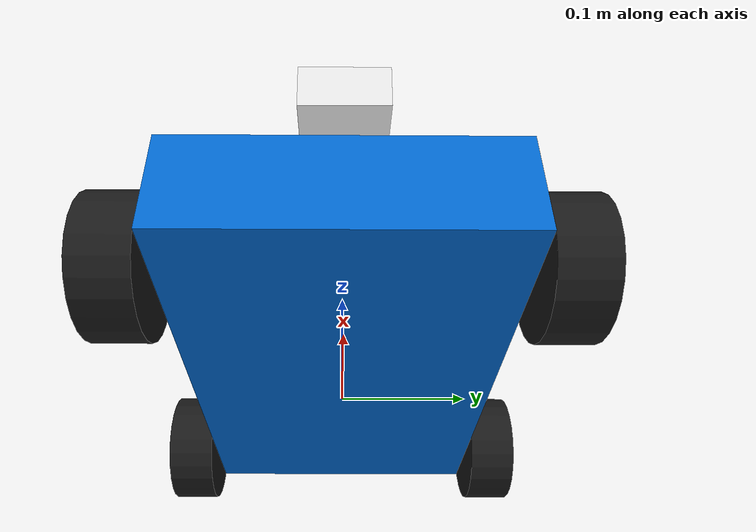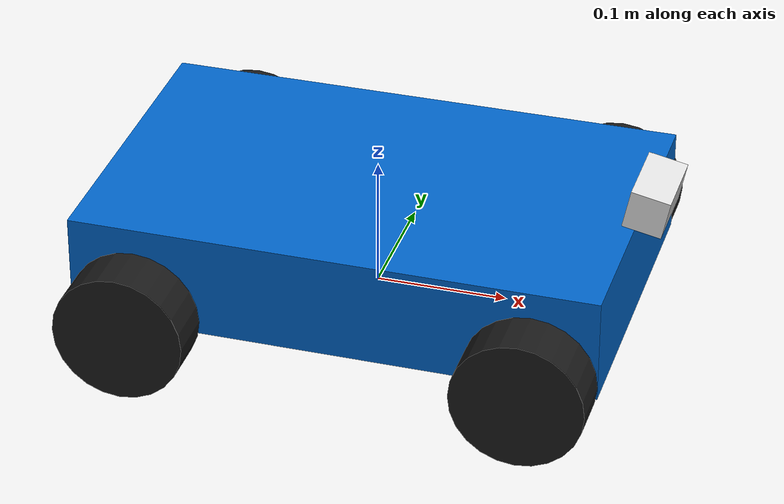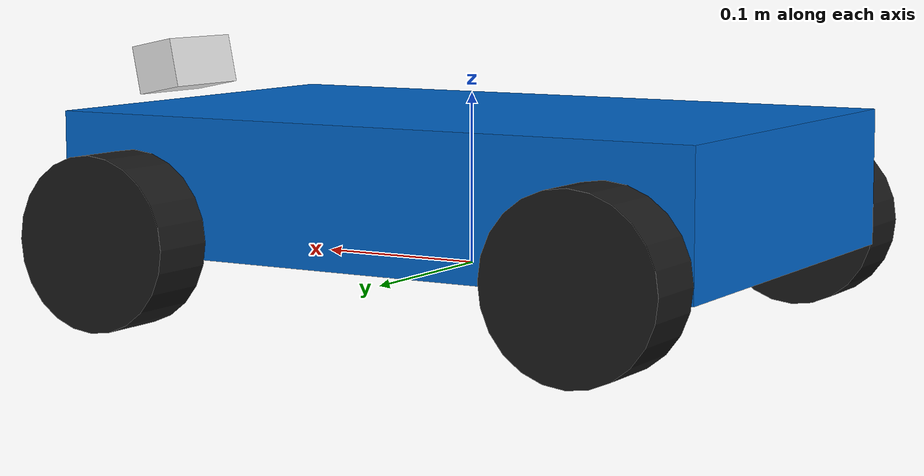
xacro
<?xml version="1.0"?>
<robot xmlns:xacro="http://www.ros.org/wiki/xacro" name="hyper">

  <xacro:arg name="robot_name" default="hyper"/>

  <!-- ============ materials ============ -->
  <material name="black">
    <color rgba="0.1 0.1 0.1 1.0"/>
  </material>
  <material name="white">
    <color rgba="0.9 0.9 0.9 1.0"/>
  </material>
  <material name="blue">
    <color rgba="0.0 0.4 0.8 1.0"/>
  </material>

  <!-- ============ base link ============ -->
  <link name="base_footprint"/>

  <joint name="base_joint" type="fixed">
    <parent link="base_footprint"/>
    <child link="base_link"/>
    <origin xyz="0 0 0.05" rpy="0 0 0"/>
  </joint>

  <link name="base_link">
    <visual>
      <geometry>
        <box size="0.4 0.25 0.08"/>
      </geometry>
      <material name="blue"/>
    </visual>
    <collision>
      <geometry>
        <box size="0.4 0.25 0.08"/>
      </geometry>
    </collision>
    <inertial>
      <mass value="5.0"/>
      <inertia ixx="0.05" ixy="0" ixz="0"
               iyy="0.1"  iyz="0"
               izz="0.1"/>
    </inertial>
  </link>

  <!-- ============ wheels (4x) ============ -->
  <xacro:macro name="wheel" params="name x y">
    <link name="${name}">
      <visual>
        <geometry><cylinder radius="0.05" length="0.04"/></geometry>
        <origin rpy="1.5708 0 0"/>
        <material name="black"/>
      </visual>
      <collision>
        <geometry><cylinder radius="0.05" length="0.04"/></geometry>
        <origin rpy="1.5708 0 0"/>
      </collision>
      <inertial>
        <mass value="0.5"/>
        <inertia ixx="0.001" ixy="0" ixz="0"
                 iyy="0.001" iyz="0"
                 izz="0.001"/>
      </inertial>
    </link>
    <joint name="${name}_joint" type="continuous">
      <parent link="base_link"/>
      <child link="${name}"/>
      <origin xyz="${x} ${y} -0.03" rpy="0 0 0"/>
      <axis xyz="0 1 0"/>
    </joint>
  </xacro:macro>

  <xacro:wheel name="front_left_wheel"  x=" 0.15" y=" 0.145"/>
  <xacro:wheel name="front_right_wheel" x=" 0.15" y="-0.145"/>
  <xacro:wheel name="rear_left_wheel"   x="-0.15" y=" 0.145"/>
  <xacro:wheel name="rear_right_wheel"  x="-0.15" y="-0.145"/>

  <!-- ============ camera ============ -->
  <joint name="camera_joint" type="fixed">
    <parent link="base_link"/>
    <child link="camera_link"/>
    <origin xyz="0.21 0 0.06" rpy="0 0.2 0"/>
  </joint>

  <link name="camera_link">
    <visual>
      <geometry><box size="0.03 0.06 0.03"/></geometry>
      <material name="white"/>
    </visual>
    <collision>
      <geometry><box size="0.03 0.06 0.03"/></geometry>
    </collision>
    <inertial>
      <mass value="0.05"/>
      <inertia ixx="0.0001" ixy="0" ixz="0"
               iyy="0.0001" iyz="0"
               izz="0.0001"/>
    </inertial>
  </link>

  <!-- Gazebo camera sensor -->
  <gazebo reference="camera_link">
    <sensor name="camera" type="camera">
      <always_on>true</always_on>
      <update_rate>30</update_rate>
      <camera>
        <horizontal_fov>1.3962634</horizontal_fov>
        <image>
          <width>640</width>
          <height>480</height>
          <format>R8G8B8</format>
        </image>
        <clip>
          <near>0.02</near>
          <far>100</far>
        </clip>
      </camera>
      <topic>/camera/image_raw</topic>
      <gz_frame_id>camera_link</gz_frame_id>
    </sensor>
  </gazebo>

  <!-- Gazebo diff-drive plugin -->
  <gazebo>
    <plugin filename="gz-sim-diff-drive-system"
            name="gz::sim::systems::DiffDrive">
      <left_joint>front_left_wheel_joint</left_joint>
      <left_joint>rear_left_wheel_joint</left_joint>
      <right_joint>front_right_wheel_joint</right_joint>
      <right_joint>rear_right_wheel_joint</right_joint>
      <wheel_separation>0.29</wheel_separation>
      <wheel_radius>0.05</wheel_radius>
      <odom_publish_frequency>30</odom_publish_frequency>
      <topic>/cmd_vel</topic>
      <odom_topic>/odom</odom_topic>
      <tf_topic>/tf</tf_topic>
      <frame_id>odom</frame_id>
      <child_frame_id>base_footprint</child_frame_id>
    </plugin>
  </gazebo>

  <!-- IMU -->
  <joint name="imu_joint" type="fixed">
    <parent link="base_link"/>
    <child link="imu_link"/>
    <origin xyz="0 0 0.02" rpy="0 0 0"/>
  </joint>

  <link name="imu_link">
    <inertial>
      <mass value="0.01"/>
      <inertia ixx="0.00001" ixy="0" ixz="0"
               iyy="0.00001" iyz="0"
               izz="0.00001"/>
    </inertial>
  </link>

  <gazebo reference="imu_link">
    <sensor name="imu_sensor" type="imu">
      <always_on>true</always_on>
      <update_rate>100</update_rate>
      <topic>/imu/data</topic>
      <gz_frame_id>imu_link</gz_frame_id>
    </sensor>
  </gazebo>

</robot>
